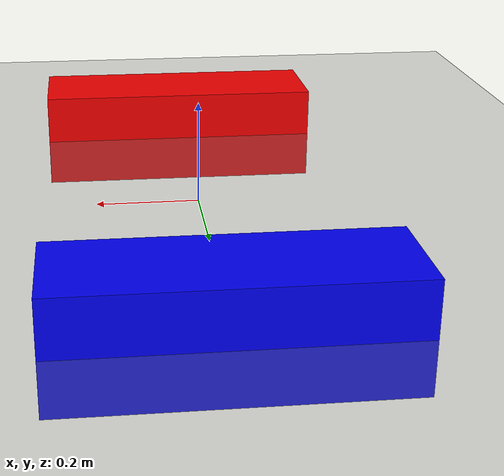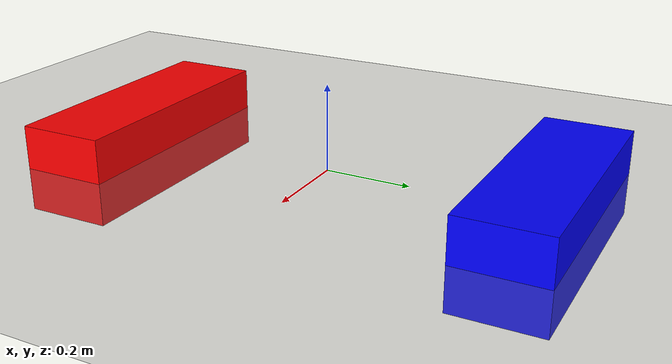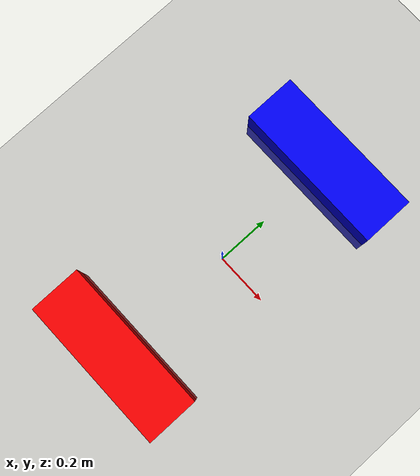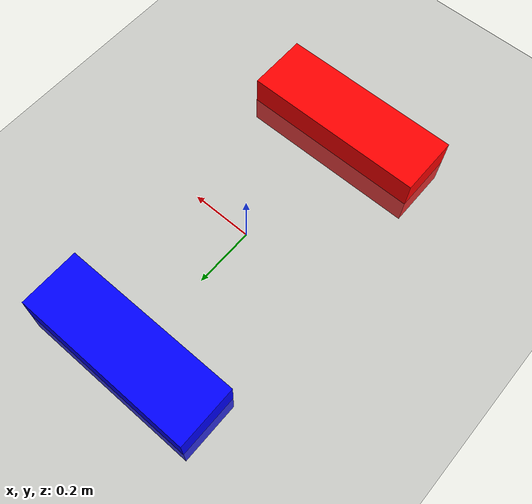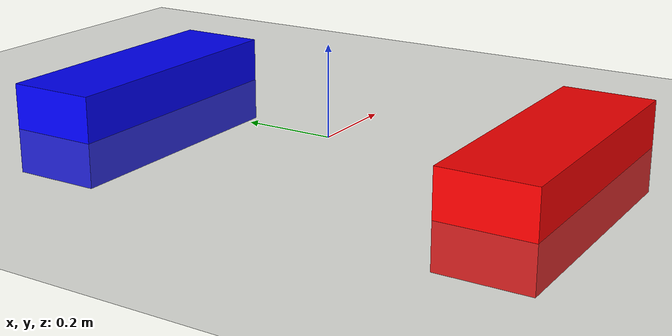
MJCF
<mujoco model="simple_base_test">
  <compiler angle="radian"/>

  <option integrator="implicitfast"/>

  <default>
    <joint armature="0.01" damping="0.1"/>
    <position kp="5000" kv="500" forcerange="-1000 1000"/>
  </default>

  <worldbody>
    <light pos="0 0 2" dir="0 0 -1" directional="true"/>
    <geom name="floor" size="0 0 0.05" type="plane"/>

    <!-- 매우 간단한 베이스 회전 테스트 -->
    <body name="left_base" pos="0 -0.5 0">
      <body name="left_rotating_box">
        <inertial pos="0 0 0.1" mass="1.0" diaginertia="0.1 0.1 0.1"/>
        <joint name="left_joint1" pos="0 0 0" axis="0 0 1" range="-3.14159 3.14159"/>
        <geom type="box" size="0.3 0.1 0.1" rgba="1 0 0 1"/>
      </body>
    </body>

    <body name="right_base" pos="0 0.5 0">
      <body name="right_rotating_box">
        <inertial pos="0 0 0.1" mass="1.0" diaginertia="0.1 0.1 0.1"/>
        <joint name="right_joint1" pos="0 0 0" axis="0 0 1" range="-3.14159 3.14159"/>
        <geom type="box" size="0.3 0.1 0.1" rgba="0 0 1 1"/>
      </body>
    </body>
  </worldbody>

  <actuator>
    <position name="left_actuator_joint1" joint="left_joint1" ctrlrange="-3.142 3.142"/>
    <position name="right_actuator_joint1" joint="right_joint1" ctrlrange="-3.142 3.142"/>
    <position name="left_actuator_joint2" joint="left_joint2" ctrlrange="-1.5 1.5"/>
    <position name="left_actuator_joint3" joint="left_joint3" ctrlrange="-1.5 1.4"/>
    <position name="left_actuator_joint4" joint="left_joint4" ctrlrange="-1.7 1.97"/>
    <position name="left_actuator_gripper_joint" joint="left_gripper_left_joint" ctrlrange="-0.01 0.019"/>

    <position name="right_actuator_joint2" joint="right_joint2" ctrlrange="-1.5 1.5"/>
    <position name="right_actuator_joint3" joint="right_joint3" ctrlrange="-1.5 1.4"/>
    <position name="right_actuator_joint4" joint="right_joint4" ctrlrange="-1.7 1.97"/>
    <position name="right_actuator_gripper_joint" joint="right_gripper_left_joint" ctrlrange="-0.01 0.019"/>
  </actuator>
</mujoco>
